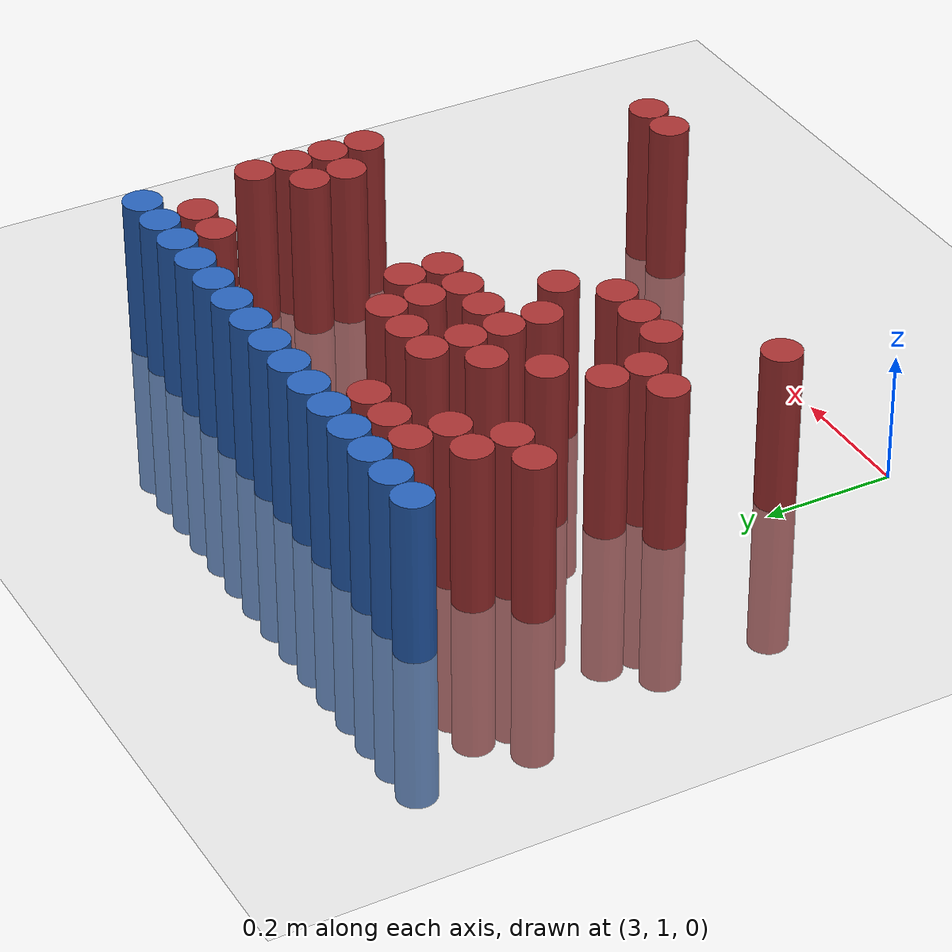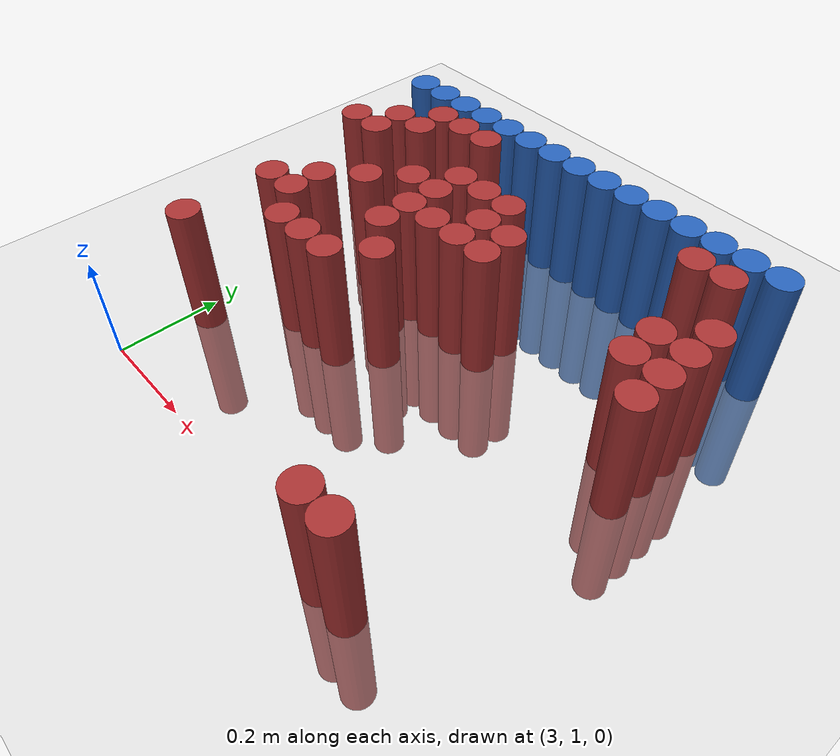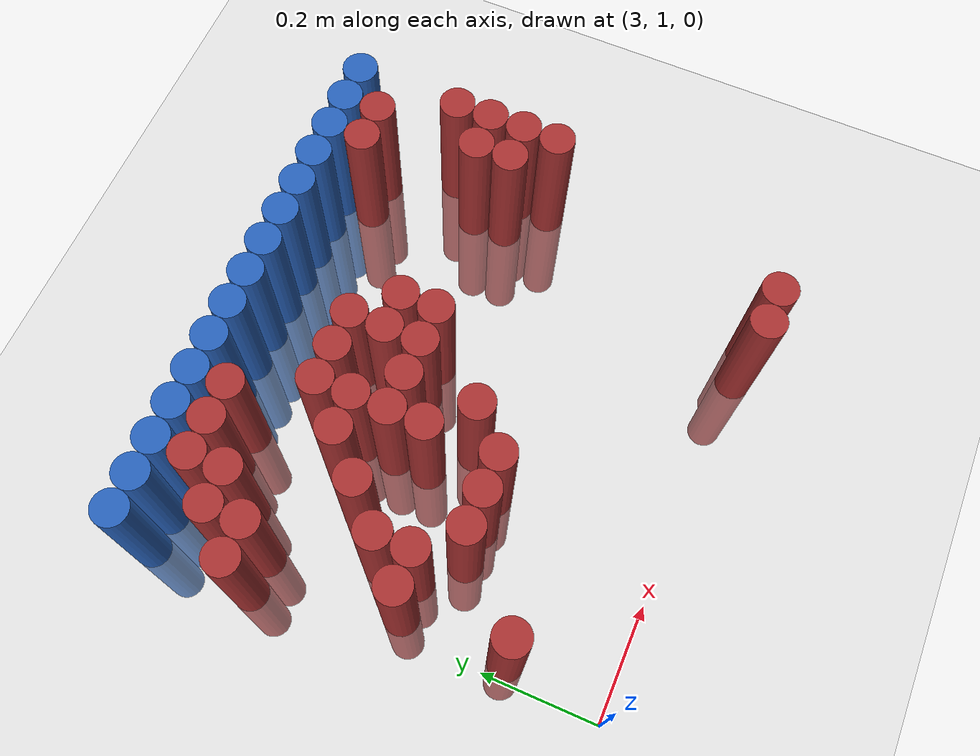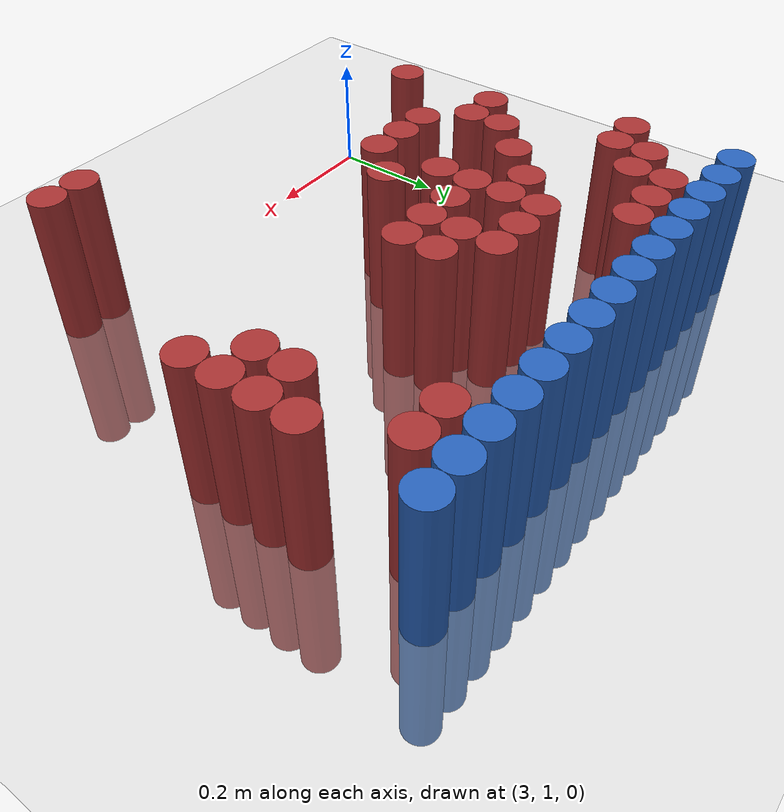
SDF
<sdf version="1.6">
 <world name="default">
  <model name="ground_plane">
   <static>1</static>
   <link name="link">
    <collision name="collision">
     <geometry><plane><normal>0 0 1</normal><size>100 100</size></plane></geometry>
     <surface><friction><ode><mu>100</mu><mu2>50</mu2></ode></friction></surface>
    </collision>
    <visual name="visual">
     <cast_shadows>0</cast_shadows>
     <geometry><plane><normal>0 0 1</normal><size>100 100</size></plane></geometry>
     <material>
      <script><uri>file://media/materials/scripts/gazebo.material</uri><name>Gazebo/Grey</name></script>
     </material>
    </visual>
   </link>
  </model>
  <model name="unit_cylinder_110">
   <static>1</static>
   <pose>2.970000 1.770000 0.000000 0.000000 0.000000 0.000000</pose>
   <link name="link">
    <inertial>
     <mass>1</mass>
     <inertia><ixx>0.145833</ixx><ixy>0</ixy><ixz>0</ixz><iyy>0.145833</iyy><iyz>0</iyz><izz>0.125</izz></inertia>
    </inertial>
    <collision name="collision">
     <geometry><cylinder><radius>0.030000</radius><length>0.5</length></cylinder></geometry>
    </collision>
    <visual name="visual">
     <geometry><cylinder><radius>0.030000</radius><length>0.5</length></cylinder></geometry>
     <material>
      <ambient>0.152000 0.379000 0.720000 1</ambient>
      <diffuse>0.152000 0.379000 0.720000 1</diffuse>
     </material>
     <material>
      <script><name>Gazebo/Grey</name><uri>file://media/materials/scripts/gazebo.material</uri></script>
     </material>
    </visual>
   </link>
  </model>
  <model name="unit_cylinder_111">
   <static>1</static>
   <pose>3.030000 1.770000 0.000000 0.000000 0.000000 0.000000</pose>
   <link name="link">
    <inertial>
     <mass>1</mass>
     <inertia><ixx>0.145833</ixx><ixy>0</ixy><ixz>0</ixz><iyy>0.145833</iyy><iyz>0</iyz><izz>0.125</izz></inertia>
    </inertial>
    <collision name="collision">
     <geometry><cylinder><radius>0.030000</radius><length>0.5</length></cylinder></geometry>
    </collision>
    <visual name="visual">
     <geometry><cylinder><radius>0.030000</radius><length>0.5</length></cylinder></geometry>
     <material>
      <ambient>0.152000 0.379000 0.720000 1</ambient>
      <diffuse>0.152000 0.379000 0.720000 1</diffuse>
     </material>
     <material>
      <script><name>Gazebo/Grey</name><uri>file://media/materials/scripts/gazebo.material</uri></script>
     </material>
    </visual>
   </link>
  </model>
  <model name="unit_cylinder_112">
   <static>1</static>
   <pose>3.090000 1.770000 0.000000 0.000000 0.000000 0.000000</pose>
   <link name="link">
    <inertial>
     <mass>1</mass>
     <inertia><ixx>0.145833</ixx><ixy>0</ixy><ixz>0</ixz><iyy>0.145833</iyy><iyz>0</iyz><izz>0.125</izz></inertia>
    </inertial>
    <collision name="collision">
     <geometry><cylinder><radius>0.030000</radius><length>0.5</length></cylinder></geometry>
    </collision>
    <visual name="visual">
     <geometry><cylinder><radius>0.030000</radius><length>0.5</length></cylinder></geometry>
     <material>
      <ambient>0.152000 0.379000 0.720000 1</ambient>
      <diffuse>0.152000 0.379000 0.720000 1</diffuse>
     </material>
     <material>
      <script><name>Gazebo/Grey</name><uri>file://media/materials/scripts/gazebo.material</uri></script>
     </material>
    </visual>
   </link>
  </model>
  <model name="unit_cylinder_113">
   <static>1</static>
   <pose>3.150000 1.770000 0.000000 0.000000 0.000000 0.000000</pose>
   <link name="link">
    <inertial>
     <mass>1</mass>
     <inertia><ixx>0.145833</ixx><ixy>0</ixy><ixz>0</ixz><iyy>0.145833</iyy><iyz>0</iyz><izz>0.125</izz></inertia>
    </inertial>
    <collision name="collision">
     <geometry><cylinder><radius>0.030000</radius><length>0.5</length></cylinder></geometry>
    </collision>
    <visual name="visual">
     <geometry><cylinder><radius>0.030000</radius><length>0.5</length></cylinder></geometry>
     <material>
      <ambient>0.152000 0.379000 0.720000 1</ambient>
      <diffuse>0.152000 0.379000 0.720000 1</diffuse>
     </material>
     <material>
      <script><name>Gazebo/Grey</name><uri>file://media/materials/scripts/gazebo.material</uri></script>
     </material>
    </visual>
   </link>
  </model>
  <model name="unit_cylinder_114">
   <static>1</static>
   <pose>3.210000 1.770000 0.000000 0.000000 0.000000 0.000000</pose>
   <link name="link">
    <inertial>
     <mass>1</mass>
     <inertia><ixx>0.145833</ixx><ixy>0</ixy><ixz>0</ixz><iyy>0.145833</iyy><iyz>0</iyz><izz>0.125</izz></inertia>
    </inertial>
    <collision name="collision">
     <geometry><cylinder><radius>0.030000</radius><length>0.5</length></cylinder></geometry>
    </collision>
    <visual name="visual">
     <geometry><cylinder><radius>0.030000</radius><length>0.5</length></cylinder></geometry>
     <material>
      <ambient>0.152000 0.379000 0.720000 1</ambient>
      <diffuse>0.152000 0.379000 0.720000 1</diffuse>
     </material>
     <material>
      <script><name>Gazebo/Grey</name><uri>file://media/materials/scripts/gazebo.material</uri></script>
     </material>
    </visual>
   </link>
  </model>
  <model name="unit_cylinder_115">
   <static>1</static>
   <pose>3.270000 1.770000 0.000000 0.000000 0.000000 0.000000</pose>
   <link name="link">
    <inertial>
     <mass>1</mass>
     <inertia><ixx>0.145833</ixx><ixy>0</ixy><ixz>0</ixz><iyy>0.145833</iyy><iyz>0</iyz><izz>0.125</izz></inertia>
    </inertial>
    <collision name="collision">
     <geometry><cylinder><radius>0.030000</radius><length>0.5</length></cylinder></geometry>
    </collision>
    <visual name="visual">
     <geometry><cylinder><radius>0.030000</radius><length>0.5</length></cylinder></geometry>
     <material>
      <ambient>0.152000 0.379000 0.720000 1</ambient>
      <diffuse>0.152000 0.379000 0.720000 1</diffuse>
     </material>
     <material>
      <script><name>Gazebo/Grey</name><uri>file://media/materials/scripts/gazebo.material</uri></script>
     </material>
    </visual>
   </link>
  </model>
  <model name="unit_cylinder_116">
   <static>1</static>
   <pose>3.330000 1.770000 0.000000 0.000000 0.000000 0.000000</pose>
   <link name="link">
    <inertial>
     <mass>1</mass>
     <inertia><ixx>0.145833</ixx><ixy>0</ixy><ixz>0</ixz><iyy>0.145833</iyy><iyz>0</iyz><izz>0.125</izz></inertia>
    </inertial>
    <collision name="collision">
     <geometry><cylinder><radius>0.030000</radius><length>0.5</length></cylinder></geometry>
    </collision>
    <visual name="visual">
     <geometry><cylinder><radius>0.030000</radius><length>0.5</length></cylinder></geometry>
     <material>
      <ambient>0.152000 0.379000 0.720000 1</ambient>
      <diffuse>0.152000 0.379000 0.720000 1</diffuse>
     </material>
     <material>
      <script><name>Gazebo/Grey</name><uri>file://media/materials/scripts/gazebo.material</uri></script>
     </material>
    </visual>
   </link>
  </model>
  <model name="unit_cylinder_117">
   <static>1</static>
   <pose>3.390000 1.770000 0.000000 0.000000 0.000000 0.000000</pose>
   <link name="link">
    <inertial>
     <mass>1</mass>
     <inertia><ixx>0.145833</ixx><ixy>0</ixy><ixz>0</ixz><iyy>0.145833</iyy><iyz>0</iyz><izz>0.125</izz></inertia>
    </inertial>
    <collision name="collision">
     <geometry><cylinder><radius>0.030000</radius><length>0.5</length></cylinder></geometry>
    </collision>
    <visual name="visual">
     <geometry><cylinder><radius>0.030000</radius><length>0.5</length></cylinder></geometry>
     <material>
      <ambient>0.152000 0.379000 0.720000 1</ambient>
      <diffuse>0.152000 0.379000 0.720000 1</diffuse>
     </material>
     <material>
      <script><name>Gazebo/Grey</name><uri>file://media/materials/scripts/gazebo.material</uri></script>
     </material>
    </visual>
   </link>
  </model>
  <model name="unit_cylinder_118">
   <static>1</static>
   <pose>3.450000 1.770000 0.000000 0.000000 0.000000 0.000000</pose>
   <link name="link">
    <inertial>
     <mass>1</mass>
     <inertia><ixx>0.145833</ixx><ixy>0</ixy><ixz>0</ixz><iyy>0.145833</iyy><iyz>0</iyz><izz>0.125</izz></inertia>
    </inertial>
    <collision name="collision">
     <geometry><cylinder><radius>0.030000</radius><length>0.5</length></cylinder></geometry>
    </collision>
    <visual name="visual">
     <geometry><cylinder><radius>0.030000</radius><length>0.5</length></cylinder></geometry>
     <material>
      <ambient>0.152000 0.379000 0.720000 1</ambient>
      <diffuse>0.152000 0.379000 0.720000 1</diffuse>
     </material>
     <material>
      <script><name>Gazebo/Grey</name><uri>file://media/materials/scripts/gazebo.material</uri></script>
     </material>
    </visual>
   </link>
  </model>
  <model name="unit_cylinder_119">
   <static>1</static>
   <pose>3.510000 1.770000 0.000000 0.000000 0.000000 0.000000</pose>
   <link name="link">
    <inertial>
     <mass>1</mass>
     <inertia><ixx>0.145833</ixx><ixy>0</ixy><ixz>0</ixz><iyy>0.145833</iyy><iyz>0</iyz><izz>0.125</izz></inertia>
    </inertial>
    <collision name="collision">
     <geometry><cylinder><radius>0.030000</radius><length>0.5</length></cylinder></geometry>
    </collision>
    <visual name="visual">
     <geometry><cylinder><radius>0.030000</radius><length>0.5</length></cylinder></geometry>
     <material>
      <ambient>0.152000 0.379000 0.720000 1</ambient>
      <diffuse>0.152000 0.379000 0.720000 1</diffuse>
     </material>
     <material>
      <script><name>Gazebo/Grey</name><uri>file://media/materials/scripts/gazebo.material</uri></script>
     </material>
    </visual>
   </link>
  </model>
  <model name="unit_cylinder_120">
   <static>1</static>
   <pose>3.570000 1.770000 0.000000 0.000000 0.000000 0.000000</pose>
   <link name="link">
    <inertial>
     <mass>1</mass>
     <inertia><ixx>0.145833</ixx><ixy>0</ixy><ixz>0</ixz><iyy>0.145833</iyy><iyz>0</iyz><izz>0.125</izz></inertia>
    </inertial>
    <collision name="collision">
     <geometry><cylinder><radius>0.030000</radius><length>0.5</length></cylinder></geometry>
    </collision>
    <visual name="visual">
     <geometry><cylinder><radius>0.030000</radius><length>0.5</length></cylinder></geometry>
     <material>
      <ambient>0.152000 0.379000 0.720000 1</ambient>
      <diffuse>0.152000 0.379000 0.720000 1</diffuse>
     </material>
     <material>
      <script><name>Gazebo/Grey</name><uri>file://media/materials/scripts/gazebo.material</uri></script>
     </material>
    </visual>
   </link>
  </model>
  <model name="unit_cylinder_121">
   <static>1</static>
   <pose>3.630000 1.770000 0.000000 0.000000 0.000000 0.000000</pose>
   <link name="link">
    <inertial>
     <mass>1</mass>
     <inertia><ixx>0.145833</ixx><ixy>0</ixy><ixz>0</ixz><iyy>0.145833</iyy><iyz>0</iyz><izz>0.125</izz></inertia>
    </inertial>
    <collision name="collision">
     <geometry><cylinder><radius>0.030000</radius><length>0.5</length></cylinder></geometry>
    </collision>
    <visual name="visual">
     <geometry><cylinder><radius>0.030000</radius><length>0.5</length></cylinder></geometry>
     <material>
      <ambient>0.152000 0.379000 0.720000 1</ambient>
      <diffuse>0.152000 0.379000 0.720000 1</diffuse>
     </material>
     <material>
      <script><name>Gazebo/Grey</name><uri>file://media/materials/scripts/gazebo.material</uri></script>
     </material>
    </visual>
   </link>
  </model>
  <model name="unit_cylinder_122">
   <static>1</static>
   <pose>3.690000 1.770000 0.000000 0.000000 0.000000 0.000000</pose>
   <link name="link">
    <inertial>
     <mass>1</mass>
     <inertia><ixx>0.145833</ixx><ixy>0</ixy><ixz>0</ixz><iyy>0.145833</iyy><iyz>0</iyz><izz>0.125</izz></inertia>
    </inertial>
    <collision name="collision">
     <geometry><cylinder><radius>0.030000</radius><length>0.5</length></cylinder></geometry>
    </collision>
    <visual name="visual">
     <geometry><cylinder><radius>0.030000</radius><length>0.5</length></cylinder></geometry>
     <material>
      <ambient>0.152000 0.379000 0.720000 1</ambient>
      <diffuse>0.152000 0.379000 0.720000 1</diffuse>
     </material>
     <material>
      <script><name>Gazebo/Grey</name><uri>file://media/materials/scripts/gazebo.material</uri></script>
     </material>
    </visual>
   </link>
  </model>
  <model name="unit_cylinder_123">
   <static>1</static>
   <pose>3.750000 1.770000 0.000000 0.000000 0.000000 0.000000</pose>
   <link name="link">
    <inertial>
     <mass>1</mass>
     <inertia><ixx>0.145833</ixx><ixy>0</ixy><ixz>0</ixz><iyy>0.145833</iyy><iyz>0</iyz><izz>0.125</izz></inertia>
    </inertial>
    <collision name="collision">
     <geometry><cylinder><radius>0.030000</radius><length>0.5</length></cylinder></geometry>
    </collision>
    <visual name="visual">
     <geometry><cylinder><radius>0.030000</radius><length>0.5</length></cylinder></geometry>
     <material>
      <ambient>0.152000 0.379000 0.720000 1</ambient>
      <diffuse>0.152000 0.379000 0.720000 1</diffuse>
     </material>
     <material>
      <script><name>Gazebo/Grey</name><uri>file://media/materials/scripts/gazebo.material</uri></script>
     </material>
    </visual>
   </link>
  </model>
  <model name="unit_cylinder_124">
   <static>1</static>
   <pose>3.810000 1.770000 0.000000 0.000000 0.000000 0.000000</pose>
   <link name="link">
    <inertial>
     <mass>1</mass>
     <inertia><ixx>0.145833</ixx><ixy>0</ixy><ixz>0</ixz><iyy>0.145833</iyy><iyz>0</iyz><izz>0.125</izz></inertia>
    </inertial>
    <collision name="collision">
     <geometry><cylinder><radius>0.030000</radius><length>0.5</length></cylinder></geometry>
    </collision>
    <visual name="visual">
     <geometry><cylinder><radius>0.030000</radius><length>0.5</length></cylinder></geometry>
     <material>
      <ambient>0.152000 0.379000 0.720000 1</ambient>
      <diffuse>0.152000 0.379000 0.720000 1</diffuse>
     </material>
     <material>
      <script><name>Gazebo/Grey</name><uri>file://media/materials/scripts/gazebo.material</uri></script>
     </material>
    </visual>
   </link>
  </model>
  <model name="unit_cylinder_131">
   <static>1</static>
   <pose>3.090000 1.710000 0.000000 0.000000 0.000000 0.000000</pose>
   <link name="link">
    <inertial>
     <mass>1</mass>
     <inertia><ixx>0.145833</ixx><ixy>0</ixy><ixz>0</ixz><iyy>0.145833</iyy><iyz>0</iyz><izz>0.125</izz></inertia>
    </inertial>
    <collision name="collision">
     <geometry><cylinder><radius>0.030000</radius><length>0.5</length></cylinder></geometry>
    </collision>
    <visual name="visual">
     <geometry><cylinder><radius>0.030000</radius><length>0.5</length></cylinder></geometry>
     <material>
      <ambient>0.648000 0.192000 0.192000 1</ambient>
      <diffuse>0.648000 0.192000 0.192000 1</diffuse>
     </material>
     <material>
      <script><name>Gazebo/Grey</name><uri>file://media/materials/scripts/gazebo.material</uri></script>
     </material>
    </visual>
   </link>
  </model>
  <model name="unit_cylinder_132">
   <static>1</static>
   <pose>3.150000 1.710000 0.000000 0.000000 0.000000 0.000000</pose>
   <link name="link">
    <inertial>
     <mass>1</mass>
     <inertia><ixx>0.145833</ixx><ixy>0</ixy><ixz>0</ixz><iyy>0.145833</iyy><iyz>0</iyz><izz>0.125</izz></inertia>
    </inertial>
    <collision name="collision">
     <geometry><cylinder><radius>0.030000</radius><length>0.5</length></cylinder></geometry>
    </collision>
    <visual name="visual">
     <geometry><cylinder><radius>0.030000</radius><length>0.5</length></cylinder></geometry>
     <material>
      <ambient>0.648000 0.192000 0.192000 1</ambient>
      <diffuse>0.648000 0.192000 0.192000 1</diffuse>
     </material>
     <material>
      <script><name>Gazebo/Grey</name><uri>file://media/materials/scripts/gazebo.material</uri></script>
     </material>
    </visual>
   </link>
  </model>
  <model name="unit_cylinder_133">
   <static>1</static>
   <pose>3.210000 1.710000 0.000000 0.000000 0.000000 0.000000</pose>
   <link name="link">
    <inertial>
     <mass>1</mass>
     <inertia><ixx>0.145833</ixx><ixy>0</ixy><ixz>0</ixz><iyy>0.145833</iyy><iyz>0</iyz><izz>0.125</izz></inertia>
    </inertial>
    <collision name="collision">
     <geometry><cylinder><radius>0.030000</radius><length>0.5</length></cylinder></geometry>
    </collision>
    <visual name="visual">
     <geometry><cylinder><radius>0.030000</radius><length>0.5</length></cylinder></geometry>
     <material>
      <ambient>0.648000 0.192000 0.192000 1</ambient>
      <diffuse>0.648000 0.192000 0.192000 1</diffuse>
     </material>
     <material>
      <script><name>Gazebo/Grey</name><uri>file://media/materials/scripts/gazebo.material</uri></script>
     </material>
    </visual>
   </link>
  </model>
  <model name="unit_cylinder_134">
   <static>1</static>
   <pose>3.690000 1.710000 0.000000 0.000000 0.000000 0.000000</pose>
   <link name="link">
    <inertial>
     <mass>1</mass>
     <inertia><ixx>0.145833</ixx><ixy>0</ixy><ixz>0</ixz><iyy>0.145833</iyy><iyz>0</iyz><izz>0.125</izz></inertia>
    </inertial>
    <collision name="collision">
     <geometry><cylinder><radius>0.030000</radius><length>0.5</length></cylinder></geometry>
    </collision>
    <visual name="visual">
     <geometry><cylinder><radius>0.030000</radius><length>0.5</length></cylinder></geometry>
     <material>
      <ambient>0.648000 0.192000 0.192000 1</ambient>
      <diffuse>0.648000 0.192000 0.192000 1</diffuse>
     </material>
     <material>
      <script><name>Gazebo/Grey</name><uri>file://media/materials/scripts/gazebo.material</uri></script>
     </material>
    </visual>
   </link>
  </model>
  <model name="unit_cylinder_135">
   <static>1</static>
   <pose>3.750000 1.710000 0.000000 0.000000 0.000000 0.000000</pose>
   <link name="link">
    <inertial>
     <mass>1</mass>
     <inertia><ixx>0.145833</ixx><ixy>0</ixy><ixz>0</ixz><iyy>0.145833</iyy><iyz>0</iyz><izz>0.125</izz></inertia>
    </inertial>
    <collision name="collision">
     <geometry><cylinder><radius>0.030000</radius><length>0.5</length></cylinder></geometry>
    </collision>
    <visual name="visual">
     <geometry><cylinder><radius>0.030000</radius><length>0.5</length></cylinder></geometry>
     <material>
      <ambient>0.648000 0.192000 0.192000 1</ambient>
      <diffuse>0.648000 0.192000 0.192000 1</diffuse>
     </material>
     <material>
      <script><name>Gazebo/Grey</name><uri>file://media/materials/scripts/gazebo.material</uri></script>
     </material>
    </visual>
   </link>
  </model>
  <model name="unit_cylinder_140">
   <static>1</static>
   <pose>3.030000 1.650000 0.000000 0.000000 0.000000 0.000000</pose>
   <link name="link">
    <inertial>
     <mass>1</mass>
     <inertia><ixx>0.145833</ixx><ixy>0</ixy><ixz>0</ixz><iyy>0.145833</iyy><iyz>0</iyz><izz>0.125</izz></inertia>
    </inertial>
    <collision name="collision">
     <geometry><cylinder><radius>0.030000</radius><length>0.5</length></cylinder></geometry>
    </collision>
    <visual name="visual">
     <geometry><cylinder><radius>0.030000</radius><length>0.5</length></cylinder></geometry>
     <material>
      <ambient>0.648000 0.192000 0.192000 1</ambient>
      <diffuse>0.648000 0.192000 0.192000 1</diffuse>
     </material>
     <material>
      <script><name>Gazebo/Grey</name><uri>file://media/materials/scripts/gazebo.material</uri></script>
     </material>
    </visual>
   </link>
  </model>
  <model name="unit_cylinder_141">
   <static>1</static>
   <pose>3.090000 1.650000 0.000000 0.000000 0.000000 0.000000</pose>
   <link name="link">
    <inertial>
     <mass>1</mass>
     <inertia><ixx>0.145833</ixx><ixy>0</ixy><ixz>0</ixz><iyy>0.145833</iyy><iyz>0</iyz><izz>0.125</izz></inertia>
    </inertial>
    <collision name="collision">
     <geometry><cylinder><radius>0.030000</radius><length>0.5</length></cylinder></geometry>
    </collision>
    <visual name="visual">
     <geometry><cylinder><radius>0.030000</radius><length>0.5</length></cylinder></geometry>
     <material>
      <ambient>0.648000 0.192000 0.192000 1</ambient>
      <diffuse>0.648000 0.192000 0.192000 1</diffuse>
     </material>
     <material>
      <script><name>Gazebo/Grey</name><uri>file://media/materials/scripts/gazebo.material</uri></script>
     </material>
    </visual>
   </link>
  </model>
  <model name="unit_cylinder_146">
   <static>1</static>
   <pose>2.970000 1.590000 0.000000 0.000000 0.000000 0.000000</pose>
   <link name="link">
    <inertial>
     <mass>1</mass>
     <inertia><ixx>0.145833</ixx><ixy>0</ixy><ixz>0</ixz><iyy>0.145833</iyy><iyz>0</iyz><izz>0.125</izz></inertia>
    </inertial>
    <collision name="collision">
     <geometry><cylinder><radius>0.030000</radius><length>0.5</length></cylinder></geometry>
    </collision>
    <visual name="visual">
     <geometry><cylinder><radius>0.030000</radius><length>0.5</length></cylinder></geometry>
     <material>
      <ambient>0.648000 0.192000 0.192000 1</ambient>
      <diffuse>0.648000 0.192000 0.192000 1</diffuse>
     </material>
     <material>
      <script><name>Gazebo/Grey</name><uri>file://media/materials/scripts/gazebo.material</uri></script>
     </material>
    </visual>
   </link>
  </model>
  <model name="unit_cylinder_147">
   <static>1</static>
   <pose>3.030000 1.590000 0.000000 0.000000 0.000000 0.000000</pose>
   <link name="link">
    <inertial>
     <mass>1</mass>
     <inertia><ixx>0.145833</ixx><ixy>0</ixy><ixz>0</ixz><iyy>0.145833</iyy><iyz>0</iyz><izz>0.125</izz></inertia>
    </inertial>
    <collision name="collision">
     <geometry><cylinder><radius>0.030000</radius><length>0.5</length></cylinder></geometry>
    </collision>
    <visual name="visual">
     <geometry><cylinder><radius>0.030000</radius><length>0.5</length></cylinder></geometry>
     <material>
      <ambient>0.648000 0.192000 0.192000 1</ambient>
      <diffuse>0.648000 0.192000 0.192000 1</diffuse>
     </material>
     <material>
      <script><name>Gazebo/Grey</name><uri>file://media/materials/scripts/gazebo.material</uri></script>
     </material>
    </visual>
   </link>
  </model>
  <model name="unit_cylinder_148">
   <static>1</static>
   <pose>3.270000 1.590000 0.000000 0.000000 0.000000 0.000000</pose>
   <link name="link">
    <inertial>
     <mass>1</mass>
     <inertia><ixx>0.145833</ixx><ixy>0</ixy><ixz>0</ixz><iyy>0.145833</iyy><iyz>0</iyz><izz>0.125</izz></inertia>
    </inertial>
    <collision name="collision">
     <geometry><cylinder><radius>0.030000</radius><length>0.5</length></cylinder></geometry>
    </collision>
    <visual name="visual">
     <geometry><cylinder><radius>0.030000</radius><length>0.5</length></cylinder></geometry>
     <material>
      <ambient>0.648000 0.192000 0.192000 1</ambient>
      <diffuse>0.648000 0.192000 0.192000 1</diffuse>
     </material>
     <material>
      <script><name>Gazebo/Grey</name><uri>file://media/materials/scripts/gazebo.material</uri></script>
     </material>
    </visual>
   </link>
  </model>
  <model name="unit_cylinder_149">
   <static>1</static>
   <pose>3.330000 1.590000 0.000000 0.000000 0.000000 0.000000</pose>
   <link name="link">
    <inertial>
     <mass>1</mass>
     <inertia><ixx>0.145833</ixx><ixy>0</ixy><ixz>0</ixz><iyy>0.145833</iyy><iyz>0</iyz><izz>0.125</izz></inertia>
    </inertial>
    <collision name="collision">
     <geometry><cylinder><radius>0.030000</radius><length>0.5</length></cylinder></geometry>
    </collision>
    <visual name="visual">
     <geometry><cylinder><radius>0.030000</radius><length>0.5</length></cylinder></geometry>
     <material>
      <ambient>0.648000 0.192000 0.192000 1</ambient>
      <diffuse>0.648000 0.192000 0.192000 1</diffuse>
     </material>
     <material>
      <script><name>Gazebo/Grey</name><uri>file://media/materials/scripts/gazebo.material</uri></script>
     </material>
    </visual>
   </link>
  </model>
  <model name="unit_cylinder_150">
   <static>1</static>
   <pose>3.390000 1.590000 0.000000 0.000000 0.000000 0.000000</pose>
   <link name="link">
    <inertial>
     <mass>1</mass>
     <inertia><ixx>0.145833</ixx><ixy>0</ixy><ixz>0</ixz><iyy>0.145833</iyy><iyz>0</iyz><izz>0.125</izz></inertia>
    </inertial>
    <collision name="collision">
     <geometry><cylinder><radius>0.030000</radius><length>0.5</length></cylinder></geometry>
    </collision>
    <visual name="visual">
     <geometry><cylinder><radius>0.030000</radius><length>0.5</length></cylinder></geometry>
     <material>
      <ambient>0.648000 0.192000 0.192000 1</ambient>
      <diffuse>0.648000 0.192000 0.192000 1</diffuse>
     </material>
     <material>
      <script><name>Gazebo/Grey</name><uri>file://media/materials/scripts/gazebo.material</uri></script>
     </material>
    </visual>
   </link>
  </model>
  <model name="unit_cylinder_151">
   <static>1</static>
   <pose>3.810000 1.590000 0.000000 0.000000 0.000000 0.000000</pose>
   <link name="link">
    <inertial>
     <mass>1</mass>
     <inertia><ixx>0.145833</ixx><ixy>0</ixy><ixz>0</ixz><iyy>0.145833</iyy><iyz>0</iyz><izz>0.125</izz></inertia>
    </inertial>
    <collision name="collision">
     <geometry><cylinder><radius>0.030000</radius><length>0.5</length></cylinder></geometry>
    </collision>
    <visual name="visual">
     <geometry><cylinder><radius>0.030000</radius><length>0.5</length></cylinder></geometry>
     <material>
      <ambient>0.648000 0.192000 0.192000 1</ambient>
      <diffuse>0.648000 0.192000 0.192000 1</diffuse>
     </material>
     <material>
      <script><name>Gazebo/Grey</name><uri>file://media/materials/scripts/gazebo.material</uri></script>
     </material>
    </visual>
   </link>
  </model>
  <model name="unit_cylinder_162">
   <static>1</static>
   <pose>3.210000 1.530000 0.000000 0.000000 0.000000 0.000000</pose>
   <link name="link">
    <inertial>
     <mass>1</mass>
     <inertia><ixx>0.145833</ixx><ixy>0</ixy><ixz>0</ixz><iyy>0.145833</iyy><iyz>0</iyz><izz>0.125</izz></inertia>
    </inertial>
    <collision name="collision">
     <geometry><cylinder><radius>0.030000</radius><length>0.5</length></cylinder></geometry>
    </collision>
    <visual name="visual">
     <geometry><cylinder><radius>0.030000</radius><length>0.5</length></cylinder></geometry>
     <material>
      <ambient>0.648000 0.192000 0.192000 1</ambient>
      <diffuse>0.648000 0.192000 0.192000 1</diffuse>
     </material>
     <material>
      <script><name>Gazebo/Grey</name><uri>file://media/materials/scripts/gazebo.material</uri></script>
     </material>
    </visual>
   </link>
  </model>
  <model name="unit_cylinder_163">
   <static>1</static>
   <pose>3.270000 1.530000 0.000000 0.000000 0.000000 0.000000</pose>
   <link name="link">
    <inertial>
     <mass>1</mass>
     <inertia><ixx>0.145833</ixx><ixy>0</ixy><ixz>0</ixz><iyy>0.145833</iyy><iyz>0</iyz><izz>0.125</izz></inertia>
    </inertial>
    <collision name="collision">
     <geometry><cylinder><radius>0.030000</radius><length>0.5</length></cylinder></geometry>
    </collision>
    <visual name="visual">
     <geometry><cylinder><radius>0.030000</radius><length>0.5</length></cylinder></geometry>
     <material>
      <ambient>0.648000 0.192000 0.192000 1</ambient>
      <diffuse>0.648000 0.192000 0.192000 1</diffuse>
     </material>
     <material>
      <script><name>Gazebo/Grey</name><uri>file://media/materials/scripts/gazebo.material</uri></script>
     </material>
    </visual>
   </link>
  </model>
  <model name="unit_cylinder_164">
   <static>1</static>
   <pose>3.390000 1.530000 0.000000 0.000000 0.000000 0.000000</pose>
   <link name="link">
    <inertial>
     <mass>1</mass>
     <inertia><ixx>0.145833</ixx><ixy>0</ixy><ixz>0</ixz><iyy>0.145833</iyy><iyz>0</iyz><izz>0.125</izz></inertia>
    </inertial>
    <collision name="collision">
     <geometry><cylinder><radius>0.030000</radius><length>0.5</length></cylinder></geometry>
    </collision>
    <visual name="visual">
     <geometry><cylinder><radius>0.030000</radius><length>0.5</length></cylinder></geometry>
     <material>
      <ambient>0.648000 0.192000 0.192000 1</ambient>
      <diffuse>0.648000 0.192000 0.192000 1</diffuse>
     </material>
     <material>
      <script><name>Gazebo/Grey</name><uri>file://media/materials/scripts/gazebo.material</uri></script>
     </material>
    </visual>
   </link>
  </model>
  <model name="unit_cylinder_165">
   <static>1</static>
   <pose>3.450000 1.530000 0.000000 0.000000 0.000000 0.000000</pose>
   <link name="link">
    <inertial>
     <mass>1</mass>
     <inertia><ixx>0.145833</ixx><ixy>0</ixy><ixz>0</ixz><iyy>0.145833</iyy><iyz>0</iyz><izz>0.125</izz></inertia>
    </inertial>
    <collision name="collision">
     <geometry><cylinder><radius>0.030000</radius><length>0.5</length></cylinder></geometry>
    </collision>
    <visual name="visual">
     <geometry><cylinder><radius>0.030000</radius><length>0.5</length></cylinder></geometry>
     <material>
      <ambient>0.648000 0.192000 0.192000 1</ambient>
      <diffuse>0.648000 0.192000 0.192000 1</diffuse>
     </material>
     <material>
      <script><name>Gazebo/Grey</name><uri>file://media/materials/scripts/gazebo.material</uri></script>
     </material>
    </visual>
   </link>
  </model>
  <model name="unit_cylinder_166">
   <static>1</static>
   <pose>3.750000 1.530000 0.000000 0.000000 0.000000 0.000000</pose>
   <link name="link">
    <inertial>
     <mass>1</mass>
     <inertia><ixx>0.145833</ixx><ixy>0</ixy><ixz>0</ixz><iyy>0.145833</iyy><iyz>0</iyz><izz>0.125</izz></inertia>
    </inertial>
    <collision name="collision">
     <geometry><cylinder><radius>0.030000</radius><length>0.5</length></cylinder></geometry>
    </collision>
    <visual name="visual">
     <geometry><cylinder><radius>0.030000</radius><length>0.5</length></cylinder></geometry>
     <material>
      <ambient>0.648000 0.192000 0.192000 1</ambient>
      <diffuse>0.648000 0.192000 0.192000 1</diffuse>
     </material>
     <material>
      <script><name>Gazebo/Grey</name><uri>file://media/materials/scripts/gazebo.material</uri></script>
     </material>
    </visual>
   </link>
  </model>
  <model name="unit_cylinder_167">
   <static>1</static>
   <pose>3.810000 1.530000 0.000000 0.000000 0.000000 0.000000</pose>
   <link name="link">
    <inertial>
     <mass>1</mass>
     <inertia><ixx>0.145833</ixx><ixy>0</ixy><ixz>0</ixz><iyy>0.145833</iyy><iyz>0</iyz><izz>0.125</izz></inertia>
    </inertial>
    <collision name="collision">
     <geometry><cylinder><radius>0.030000</radius><length>0.5</length></cylinder></geometry>
    </collision>
    <visual name="visual">
     <geometry><cylinder><radius>0.030000</radius><length>0.5</length></cylinder></geometry>
     <material>
      <ambient>0.648000 0.192000 0.192000 1</ambient>
      <diffuse>0.648000 0.192000 0.192000 1</diffuse>
     </material>
     <material>
      <script><name>Gazebo/Grey</name><uri>file://media/materials/scripts/gazebo.material</uri></script>
     </material>
    </visual>
   </link>
  </model>
  <model name="unit_cylinder_177">
   <static>1</static>
   <pose>3.150000 1.470000 0.000000 0.000000 0.000000 0.000000</pose>
   <link name="link">
    <inertial>
     <mass>1</mass>
     <inertia><ixx>0.145833</ixx><ixy>0</ixy><ixz>0</ixz><iyy>0.145833</iyy><iyz>0</iyz><izz>0.125</izz></inertia>
    </inertial>
    <collision name="collision">
     <geometry><cylinder><radius>0.030000</radius><length>0.5</length></cylinder></geometry>
    </collision>
    <visual name="visual">
     <geometry><cylinder><radius>0.030000</radius><length>0.5</length></cylinder></geometry>
     <material>
      <ambient>0.648000 0.192000 0.192000 1</ambient>
      <diffuse>0.648000 0.192000 0.192000 1</diffuse>
     </material>
     <material>
      <script><name>Gazebo/Grey</name><uri>file://media/materials/scripts/gazebo.material</uri></script>
     </material>
    </visual>
   </link>
  </model>
  <model name="unit_cylinder_178">
   <static>1</static>
   <pose>3.270000 1.470000 0.000000 0.000000 0.000000 0.000000</pose>
   <link name="link">
    <inertial>
     <mass>1</mass>
     <inertia><ixx>0.145833</ixx><ixy>0</ixy><ixz>0</ixz><iyy>0.145833</iyy><iyz>0</iyz><izz>0.125</izz></inertia>
    </inertial>
    <collision name="collision">
     <geometry><cylinder><radius>0.030000</radius><length>0.5</length></cylinder></geometry>
    </collision>
    <visual name="visual">
     <geometry><cylinder><radius>0.030000</radius><length>0.5</length></cylinder></geometry>
     <material>
      <ambient>0.648000 0.192000 0.192000 1</ambient>
      <diffuse>0.648000 0.192000 0.192000 1</diffuse>
     </material>
     <material>
      <script><name>Gazebo/Grey</name><uri>file://media/materials/scripts/gazebo.material</uri></script>
     </material>
    </visual>
   </link>
  </model>
  <model name="unit_cylinder_179">
   <static>1</static>
   <pose>3.330000 1.470000 0.000000 0.000000 0.000000 0.000000</pose>
   <link name="link">
    <inertial>
     <mass>1</mass>
     <inertia><ixx>0.145833</ixx><ixy>0</ixy><ixz>0</ixz><iyy>0.145833</iyy><iyz>0</iyz><izz>0.125</izz></inertia>
    </inertial>
    <collision name="collision">
     <geometry><cylinder><radius>0.030000</radius><length>0.5</length></cylinder></geometry>
    </collision>
    <visual name="visual">
     <geometry><cylinder><radius>0.030000</radius><length>0.5</length></cylinder></geometry>
     <material>
      <ambient>0.648000 0.192000 0.192000 1</ambient>
      <diffuse>0.648000 0.192000 0.192000 1</diffuse>
     </material>
     <material>
      <script><name>Gazebo/Grey</name><uri>file://media/materials/scripts/gazebo.material</uri></script>
     </material>
    </visual>
   </link>
  </model>
  <model name="unit_cylinder_180">
   <static>1</static>
   <pose>3.390000 1.470000 0.000000 0.000000 0.000000 0.000000</pose>
   <link name="link">
    <inertial>
     <mass>1</mass>
     <inertia><ixx>0.145833</ixx><ixy>0</ixy><ixz>0</ixz><iyy>0.145833</iyy><iyz>0</iyz><izz>0.125</izz></inertia>
    </inertial>
    <collision name="collision">
     <geometry><cylinder><radius>0.030000</radius><length>0.5</length></cylinder></geometry>
    </collision>
    <visual name="visual">
     <geometry><cylinder><radius>0.030000</radius><length>0.5</length></cylinder></geometry>
     <material>
      <ambient>0.648000 0.192000 0.192000 1</ambient>
      <diffuse>0.648000 0.192000 0.192000 1</diffuse>
     </material>
     <material>
      <script><name>Gazebo/Grey</name><uri>file://media/materials/scripts/gazebo.material</uri></script>
     </material>
    </visual>
   </link>
  </model>
  <model name="unit_cylinder_181">
   <static>1</static>
   <pose>3.450000 1.470000 0.000000 0.000000 0.000000 0.000000</pose>
   <link name="link">
    <inertial>
     <mass>1</mass>
     <inertia><ixx>0.145833</ixx><ixy>0</ixy><ixz>0</ixz><iyy>0.145833</iyy><iyz>0</iyz><izz>0.125</izz></inertia>
    </inertial>
    <collision name="collision">
     <geometry><cylinder><radius>0.030000</radius><length>0.5</length></cylinder></geometry>
    </collision>
    <visual name="visual">
     <geometry><cylinder><radius>0.030000</radius><length>0.5</length></cylinder></geometry>
     <material>
      <ambient>0.648000 0.192000 0.192000 1</ambient>
      <diffuse>0.648000 0.192000 0.192000 1</diffuse>
     </material>
     <material>
      <script><name>Gazebo/Grey</name><uri>file://media/materials/scripts/gazebo.material</uri></script>
     </material>
    </visual>
   </link>
  </model>
  <model name="unit_cylinder_182">
   <static>1</static>
   <pose>3.750000 1.470000 0.000000 0.000000 0.000000 0.000000</pose>
   <link name="link">
    <inertial>
     <mass>1</mass>
     <inertia><ixx>0.145833</ixx><ixy>0</ixy><ixz>0</ixz><iyy>0.145833</iyy><iyz>0</iyz><izz>0.125</izz></inertia>
    </inertial>
    <collision name="collision">
     <geometry><cylinder><radius>0.030000</radius><length>0.5</length></cylinder></geometry>
    </collision>
    <visual name="visual">
     <geometry><cylinder><radius>0.030000</radius><length>0.5</length></cylinder></geometry>
     <material>
      <ambient>0.648000 0.192000 0.192000 1</ambient>
      <diffuse>0.648000 0.192000 0.192000 1</diffuse>
     </material>
     <material>
      <script><name>Gazebo/Grey</name><uri>file://media/materials/scripts/gazebo.material</uri></script>
     </material>
    </visual>
   </link>
  </model>
  <model name="unit_cylinder_183">
   <static>1</static>
   <pose>3.810000 1.470000 0.000000 0.000000 0.000000 0.000000</pose>
   <link name="link">
    <inertial>
     <mass>1</mass>
     <inertia><ixx>0.145833</ixx><ixy>0</ixy><ixz>0</ixz><iyy>0.145833</iyy><iyz>0</iyz><izz>0.125</izz></inertia>
    </inertial>
    <collision name="collision">
     <geometry><cylinder><radius>0.030000</radius><length>0.5</length></cylinder></geometry>
    </collision>
    <visual name="visual">
     <geometry><cylinder><radius>0.030000</radius><length>0.5</length></cylinder></geometry>
     <material>
      <ambient>0.648000 0.192000 0.192000 1</ambient>
      <diffuse>0.648000 0.192000 0.192000 1</diffuse>
     </material>
     <material>
      <script><name>Gazebo/Grey</name><uri>file://media/materials/scripts/gazebo.material</uri></script>
     </material>
    </visual>
   </link>
  </model>
  <model name="unit_cylinder_193">
   <static>1</static>
   <pose>3.090000 1.410000 0.000000 0.000000 0.000000 0.000000</pose>
   <link name="link">
    <inertial>
     <mass>1</mass>
     <inertia><ixx>0.145833</ixx><ixy>0</ixy><ixz>0</ixz><iyy>0.145833</iyy><iyz>0</iyz><izz>0.125</izz></inertia>
    </inertial>
    <collision name="collision">
     <geometry><cylinder><radius>0.030000</radius><length>0.5</length></cylinder></geometry>
    </collision>
    <visual name="visual">
     <geometry><cylinder><radius>0.030000</radius><length>0.5</length></cylinder></geometry>
     <material>
      <ambient>0.648000 0.192000 0.192000 1</ambient>
      <diffuse>0.648000 0.192000 0.192000 1</diffuse>
     </material>
     <material>
      <script><name>Gazebo/Grey</name><uri>file://media/materials/scripts/gazebo.material</uri></script>
     </material>
    </visual>
   </link>
  </model>
  <model name="unit_cylinder_194">
   <static>1</static>
   <pose>3.270000 1.410000 0.000000 0.000000 0.000000 0.000000</pose>
   <link name="link">
    <inertial>
     <mass>1</mass>
     <inertia><ixx>0.145833</ixx><ixy>0</ixy><ixz>0</ixz><iyy>0.145833</iyy><iyz>0</iyz><izz>0.125</izz></inertia>
    </inertial>
    <collision name="collision">
     <geometry><cylinder><radius>0.030000</radius><length>0.5</length></cylinder></geometry>
    </collision>
    <visual name="visual">
     <geometry><cylinder><radius>0.030000</radius><length>0.5</length></cylinder></geometry>
     <material>
      <ambient>0.648000 0.192000 0.192000 1</ambient>
      <diffuse>0.648000 0.192000 0.192000 1</diffuse>
     </material>
     <material>
      <script><name>Gazebo/Grey</name><uri>file://media/materials/scripts/gazebo.material</uri></script>
     </material>
    </visual>
   </link>
  </model>
  <model name="unit_cylinder_195">
   <static>1</static>
   <pose>3.810000 1.410000 0.000000 0.000000 0.000000 0.000000</pose>
   <link name="link">
    <inertial>
     <mass>1</mass>
     <inertia><ixx>0.145833</ixx><ixy>0</ixy><ixz>0</ixz><iyy>0.145833</iyy><iyz>0</iyz><izz>0.125</izz></inertia>
    </inertial>
    <collision name="collision">
     <geometry><cylinder><radius>0.030000</radius><length>0.5</length></cylinder></geometry>
    </collision>
    <visual name="visual">
     <geometry><cylinder><radius>0.030000</radius><length>0.5</length></cylinder></geometry>
     <material>
      <ambient>0.648000 0.192000 0.192000 1</ambient>
      <diffuse>0.648000 0.192000 0.192000 1</diffuse>
     </material>
     <material>
      <script><name>Gazebo/Grey</name><uri>file://media/materials/scripts/gazebo.material</uri></script>
     </material>
    </visual>
   </link>
  </model>
  <model name="unit_cylinder_200">
   <static>1</static>
   <pose>3.030000 1.350000 0.000000 0.000000 0.000000 0.000000</pose>
   <link name="link">
    <inertial>
     <mass>1</mass>
     <inertia><ixx>0.145833</ixx><ixy>0</ixy><ixz>0</ixz><iyy>0.145833</iyy><iyz>0</iyz><izz>0.125</izz></inertia>
    </inertial>
    <collision name="collision">
     <geometry><cylinder><radius>0.030000</radius><length>0.5</length></cylinder></geometry>
    </collision>
    <visual name="visual">
     <geometry><cylinder><radius>0.030000</radius><length>0.5</length></cylinder></geometry>
     <material>
      <ambient>0.648000 0.192000 0.192000 1</ambient>
      <diffuse>0.648000 0.192000 0.192000 1</diffuse>
     </material>
     <material>
      <script><name>Gazebo/Grey</name><uri>file://media/materials/scripts/gazebo.material</uri></script>
     </material>
    </visual>
   </link>
  </model>
  <model name="unit_cylinder_201">
   <static>1</static>
   <pose>3.090000 1.350000 0.000000 0.000000 0.000000 0.000000</pose>
   <link name="link">
    <inertial>
     <mass>1</mass>
     <inertia><ixx>0.145833</ixx><ixy>0</ixy><ixz>0</ixz><iyy>0.145833</iyy><iyz>0</iyz><izz>0.125</izz></inertia>
    </inertial>
    <collision name="collision">
     <geometry><cylinder><radius>0.030000</radius><length>0.5</length></cylinder></geometry>
    </collision>
    <visual name="visual">
     <geometry><cylinder><radius>0.030000</radius><length>0.5</length></cylinder></geometry>
     <material>
      <ambient>0.648000 0.192000 0.192000 1</ambient>
      <diffuse>0.648000 0.192000 0.192000 1</diffuse>
     </material>
     <material>
      <script><name>Gazebo/Grey</name><uri>file://media/materials/scripts/gazebo.material</uri></script>
     </material>
    </visual>
   </link>
  </model>
  <model name="unit_cylinder_202">
   <static>1</static>
   <pose>3.330000 1.350000 0.000000 0.000000 0.000000 0.000000</pose>
   <link name="link">
    <inertial>
     <mass>1</mass>
     <inertia><ixx>0.145833</ixx><ixy>0</ixy><ixz>0</ixz><iyy>0.145833</iyy><iyz>0</iyz><izz>0.125</izz></inertia>
    </inertial>
    <collision name="collision">
     <geometry><cylinder><radius>0.030000</radius><length>0.5</length></cylinder></geometry>
    </collision>
    <visual name="visual">
     <geometry><cylinder><radius>0.030000</radius><length>0.5</length></cylinder></geometry>
     <material>
      <ambient>0.648000 0.192000 0.192000 1</ambient>
      <diffuse>0.648000 0.192000 0.192000 1</diffuse>
     </material>
     <material>
      <script><name>Gazebo/Grey</name><uri>file://media/materials/scripts/gazebo.material</uri></script>
     </material>
    </visual>
   </link>
  </model>
  <model name="unit_cylinder_205">
   <static>1</static>
   <pose>3.150000 1.290000 0.000000 0.000000 0.000000 0.000000</pose>
   <link name="link">
    <inertial>
     <mass>1</mass>
     <inertia><ixx>0.145833</ixx><ixy>0</ixy><ixz>0</ixz><iyy>0.145833</iyy><iyz>0</iyz><izz>0.125</izz></inertia>
    </inertial>
    <collision name="collision">
     <geometry><cylinder><radius>0.030000</radius><length>0.5</length></cylinder></geometry>
    </collision>
    <visual name="visual">
     <geometry><cylinder><radius>0.030000</radius><length>0.5</length></cylinder></geometry>
     <material>
      <ambient>0.648000 0.192000 0.192000 1</ambient>
      <diffuse>0.648000 0.192000 0.192000 1</diffuse>
     </material>
     <material>
      <script><name>Gazebo/Grey</name><uri>file://media/materials/scripts/gazebo.material</uri></script>
     </material>
    </visual>
   </link>
  </model>
  <model name="unit_cylinder_206">
   <static>1</static>
   <pose>3.210000 1.290000 0.000000 0.000000 0.000000 0.000000</pose>
   <link name="link">
    <inertial>
     <mass>1</mass>
     <inertia><ixx>0.145833</ixx><ixy>0</ixy><ixz>0</ixz><iyy>0.145833</iyy><iyz>0</iyz><izz>0.125</izz></inertia>
    </inertial>
    <collision name="collision">
     <geometry><cylinder><radius>0.030000</radius><length>0.5</length></cylinder></geometry>
    </collision>
    <visual name="visual">
     <geometry><cylinder><radius>0.030000</radius><length>0.5</length></cylinder></geometry>
     <material>
      <ambient>0.648000 0.192000 0.192000 1</ambient>
      <diffuse>0.648000 0.192000 0.192000 1</diffuse>
     </material>
     <material>
      <script><name>Gazebo/Grey</name><uri>file://media/materials/scripts/gazebo.material</uri></script>
     </material>
    </visual>
   </link>
  </model>
  <model name="unit_cylinder_207">
   <static>1</static>
   <pose>3.270000 1.290000 0.000000 0.000000 0.000000 0.000000</pose>
   <link name="link">
    <inertial>
     <mass>1</mass>
     <inertia><ixx>0.145833</ixx><ixy>0</ixy><ixz>0</ixz><iyy>0.145833</iyy><iyz>0</iyz><izz>0.125</izz></inertia>
    </inertial>
    <collision name="collision">
     <geometry><cylinder><radius>0.030000</radius><length>0.5</length></cylinder></geometry>
    </collision>
    <visual name="visual">
     <geometry><cylinder><radius>0.030000</radius><length>0.5</length></cylinder></geometry>
     <material>
      <ambient>0.648000 0.192000 0.192000 1</ambient>
      <diffuse>0.648000 0.192000 0.192000 1</diffuse>
     </material>
     <material>
      <script><name>Gazebo/Grey</name><uri>file://media/materials/scripts/gazebo.material</uri></script>
     </material>
    </visual>
   </link>
  </model>
  <model name="unit_cylinder_218">
   <static>1</static>
   <pose>3.030000 1.170000 0.000000 0.000000 0.000000 0.000000</pose>
   <link name="link">
    <inertial>
     <mass>1</mass>
     <inertia><ixx>0.145833</ixx><ixy>0</ixy><ixz>0</ixz><iyy>0.145833</iyy><iyz>0</iyz><izz>0.125</izz></inertia>
    </inertial>
    <collision name="collision">
     <geometry><cylinder><radius>0.030000</radius><length>0.5</length></cylinder></geometry>
    </collision>
    <visual name="visual">
     <geometry><cylinder><radius>0.030000</radius><length>0.5</length></cylinder></geometry>
     <material>
      <ambient>0.648000 0.192000 0.192000 1</ambient>
      <diffuse>0.648000 0.192000 0.192000 1</diffuse>
     </material>
     <material>
      <script><name>Gazebo/Grey</name><uri>file://media/materials/scripts/gazebo.material</uri></script>
     </material>
    </visual>
   </link>
  </model>
  <model name="unit_cylinder_238">
   <static>1</static>
   <pose>3.630000 0.990000 0.000000 0.000000 0.000000 0.000000</pose>
   <link name="link">
    <inertial>
     <mass>1</mass>
     <inertia><ixx>0.145833</ixx><ixy>0</ixy><ixz>0</ixz><iyy>0.145833</iyy><iyz>0</iyz><izz>0.125</izz></inertia>
    </inertial>
    <collision name="collision">
     <geometry><cylinder><radius>0.030000</radius><length>0.5</length></cylinder></geometry>
    </collision>
    <visual name="visual">
     <geometry><cylinder><radius>0.030000</radius><length>0.5</length></cylinder></geometry>
     <material>
      <ambient>0.648000 0.192000 0.192000 1</ambient>
      <diffuse>0.648000 0.192000 0.192000 1</diffuse>
     </material>
     <material>
      <script><name>Gazebo/Grey</name><uri>file://media/materials/scripts/gazebo.material</uri></script>
     </material>
    </visual>
   </link>
  </model>
  <model name="unit_cylinder_239">
   <static>1</static>
   <pose>3.690000 0.990000 0.000000 0.000000 0.000000 0.000000</pose>
   <link name="link">
    <inertial>
     <mass>1</mass>
     <inertia><ixx>0.145833</ixx><ixy>0</ixy><ixz>0</ixz><iyy>0.145833</iyy><iyz>0</iyz><izz>0.125</izz></inertia>
    </inertial>
    <collision name="collision">
     <geometry><cylinder><radius>0.030000</radius><length>0.5</length></cylinder></geometry>
    </collision>
    <visual name="visual">
     <geometry><cylinder><radius>0.030000</radius><length>0.5</length></cylinder></geometry>
     <material>
      <ambient>0.648000 0.192000 0.192000 1</ambient>
      <diffuse>0.648000 0.192000 0.192000 1</diffuse>
     </material>
     <material>
      <script><name>Gazebo/Grey</name><uri>file://media/materials/scripts/gazebo.material</uri></script>
     </material>
    </visual>
   </link>
  </model>
 </world>
</sdf>
